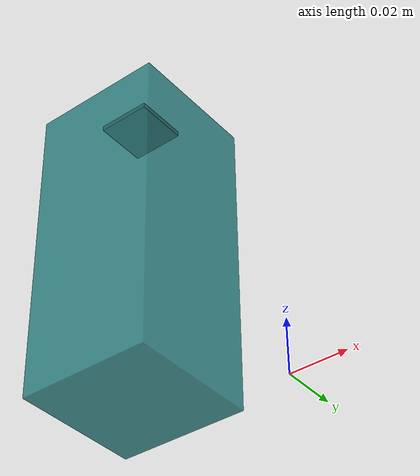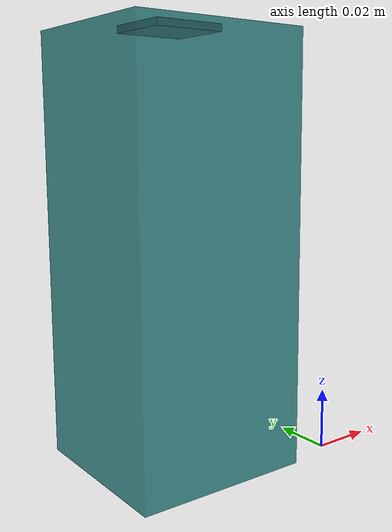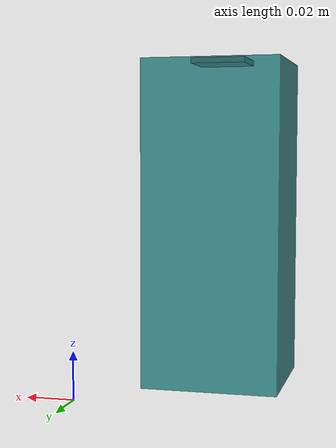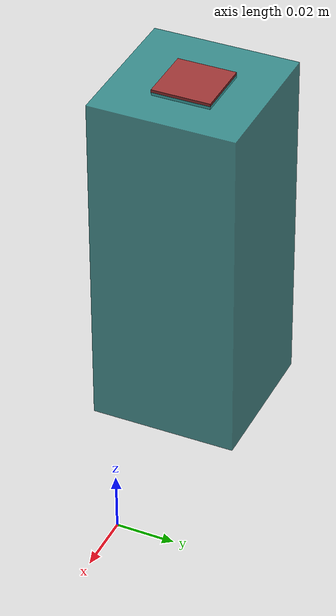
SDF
<?xml version="1.0"?>

<!--
  The cube is used for planar manipulation on the palm.
  The cube has side length 7cm.
  The cube is connected to world with a planar joint.
  (https://github.com/pangtao22/quasistatic_simulator)
-->

<sdf version="1.7">
  <model name="cube_planar">

    <joint name="world_cube_offset" type="fixed">
      <child>cube_root</child>
      <parent>world</parent>
      <axis>
        <limit>
          <effort>0</effort>
        </limit>
      </axis>
    </joint>

    <link name="cube_root">
      <pose relative_to="__model__">-0.06 0.0 0.073 0 0 0</pose>
    </link>

    <link name="cube_ghost_link_y" />
    <link name="cube_ghost_link_z" />

    <joint name="joint_x" type="prismatic">
      <parent>cube_root</parent>
      <child>cube_ghost_link_y</child>
      <axis>
        <limit>
          <lower>-0.05</lower>
          <upper>0.05</upper>
        </limit>
        <xyz>1 0 0</xyz>
      </axis>
    </joint>

    <joint name="joint_y" type="prismatic">
      <parent>cube_ghost_link_y</parent>
      <child>cube_ghost_link_z</child>
      <axis>
        <limit>
          <lower>-0.05</lower>
          <upper>0.05</upper>
        </limit>
        <xyz>0 1 0</xyz>
      </axis>
    </joint>

    <joint name="joint_z" type="revolute">
      <parent>cube_ghost_link_z</parent>
      <child>cube_link</child>
      <axis>
        <xyz>0 0 1</xyz>
      </axis>
    </joint>

    <link name="cube_link">
      <pose relative_to="cube_root">0 0 0 0 0 0</pose>
      <inertial>
        <mass>100.0</mass>
        <inertia>
          <ixx>0.1</ixx>
          <ixy>0</ixy>
          <ixz>0</ixz>
          <iyy>0.1</iyy>
          <iyz>0</iyz>
          <izz>0.1</izz>
        </inertia>
      </inertial>

      <visual name="visual">
        <geometry>
          <box>
            <size> 0.05 0.05 0.12 </size>
          </box>
        </geometry>
        <material>
          <diffuse>0.1 0.5 0.5 0.8</diffuse>
        </material>
      </visual>

      <visual name="visual_2">
        <pose> 0 0 0.06 0 0 0 </pose>
        <geometry>
          <box>
           <size> 0.02 0.02 0.002 </size>
          </box>
        </geometry>
        <material>
          <diffuse>0.6 0.2 0.2 0.9</diffuse>
        </material>
      </visual>

      <collision name="collision">
        <geometry>
          <box>
            <size> 0.05 0.05 0.12 </size>
          </box>
        </geometry>
        <surface>
          <friction>
            <ode>
              <mu>1.0</mu>
              <mu2>1.0</mu2>
            </ode>
          </friction>
        </surface>
      </collision>

    </link>

  </model>
</sdf>
